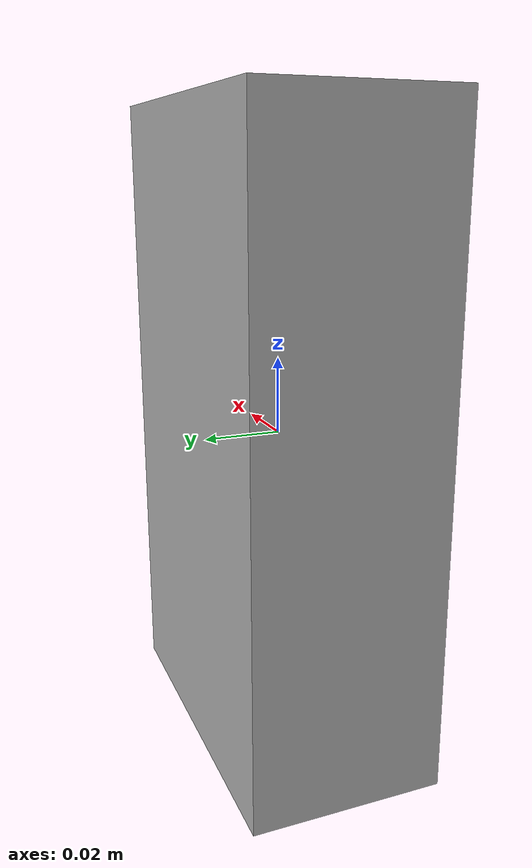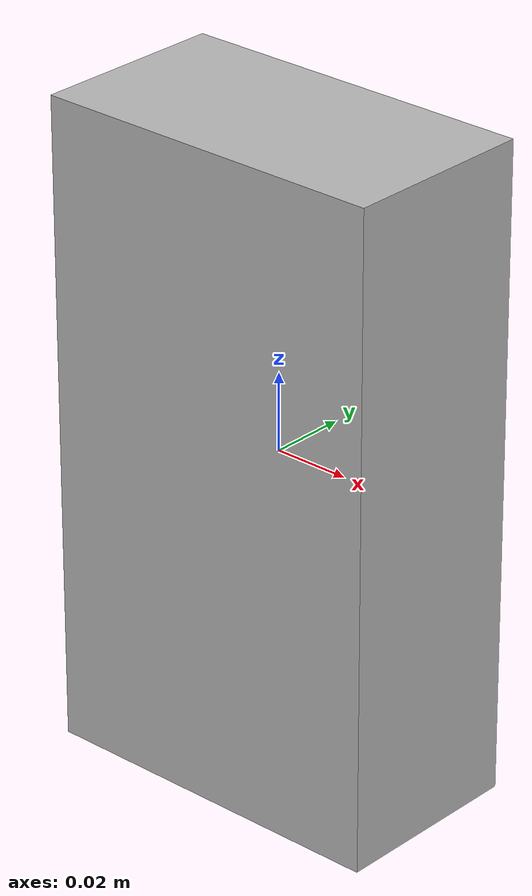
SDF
<?xml version="1.0" ?>
<sdf version="1.6">
  <model name="laser-profiler-cognex-ds1300">
    <link name="link">
      <visual name="body">
        <geometry>
          <box>
            <size>0.093 0.05 0.167</size>
          </box>
        </geometry>
      </visual>
      <sensor name="laser_profiler" type="ray">
        <update_rate>100</update_rate>
        <pose>0 0 0.06 0 0 0</pose>
        <plugin name="proximity_ray_plugin" filename="libgazebo_ros_laser.so" >
          <robotNamespace>ariac</robotNamespace>
          <frameName>laser_profiler</frameName>
          <topicName>laser_profiler</topicName>
        </plugin>
        <ray>
          <range>
            <min>0.181</min>
            <max>0.725</max>
            <resolution>0.001</resolution>
          </range>
          <scan>
            <horizontal>
              <samples>400</samples>
              <resolution>1</resolution>
              <min_angle>-0.251</min_angle>
              <max_angle>0.251</max_angle>
            </horizontal>
          </scan>

          <!-- nothing below this line really needs to be modified upon change of sensor model -->

          <noise>
            <type>gaussian</type>
            <mean>0.0</mean>
            <stddev>0.001</stddev>
          </noise>
        </ray>

        <always_on>1</always_on>
        <visualize>true</visualize>
      </sensor>
      <collision name='collision'>
        <pose>0 0 0 0 0 0</pose>
        <geometry>
          <box>
            <size>0.093 0.05 0.167</size>
          </box>
        </geometry>
      </collision>
      <gravity>false</gravity>
      <inertial>
        <mass>0.1</mass>
      </inertial>
    </link>
  </model>
</sdf>
